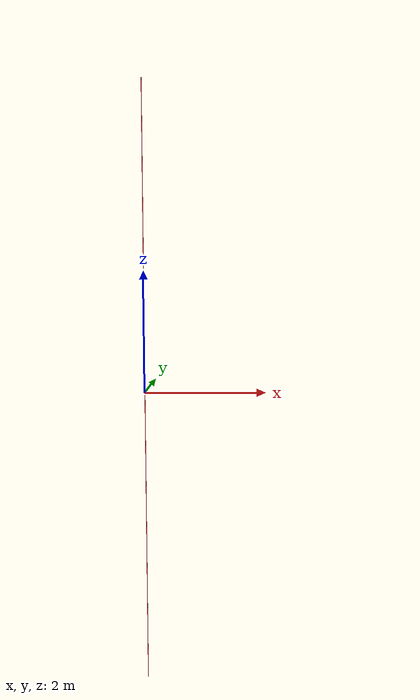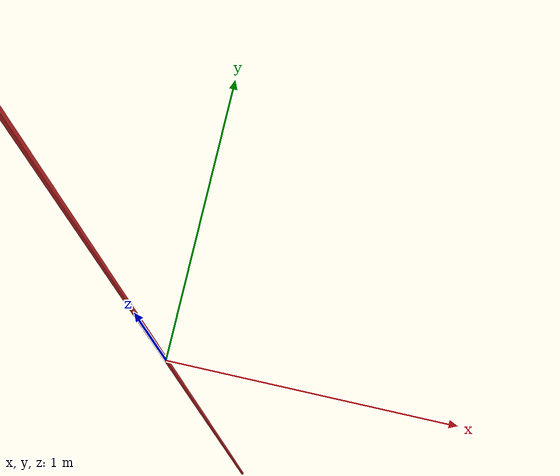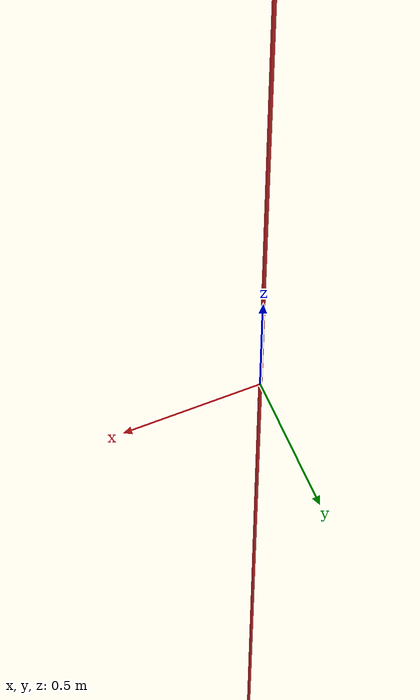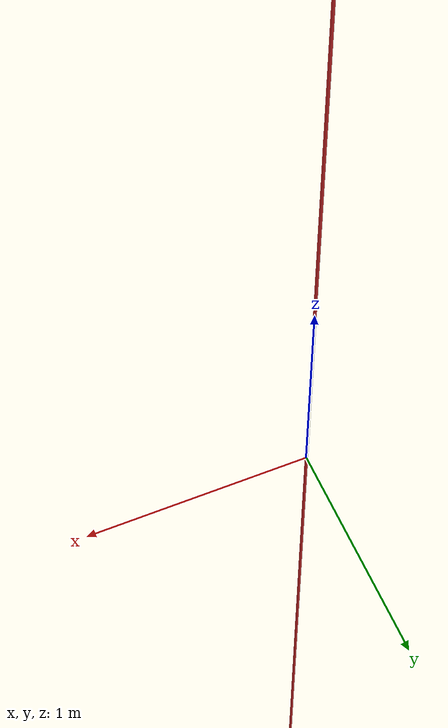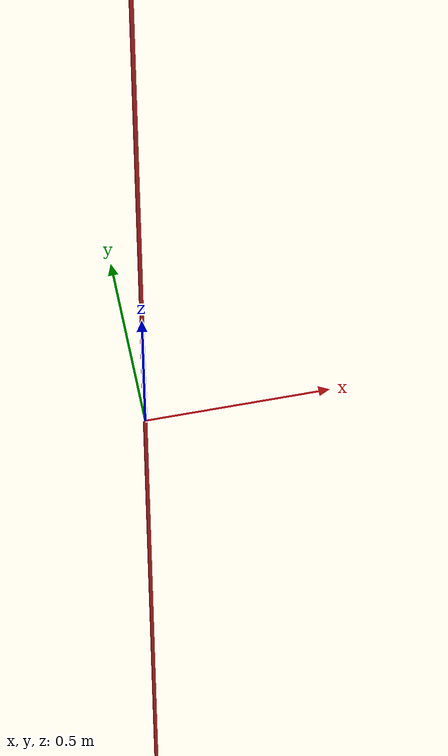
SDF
<?xml version="1.0"?>
<sdf version="1.6">
  <model name="ray_point">
    <static>true</static>
    <pose>0 0 0.005 0 -1.57075 0</pose>
    <link name="ray_link">
      <visual name="visual_box">
        <geometry>
          <box>
            <size>10.0 0.01 0.01</size>
          </box>
        </geometry>
        <material>
          <script>
            <uri>file://media/materials/scripts/gazebo.material</uri>
            <name>Gazebo/Red</name>
          </script>
        </material>
      </visual>

      <!-- ray sensor -->
      <sensor name="sensor_ray" type="ray">
        <ray>
          <range>
            <min>0.05</min>
            <max>50.0</max>
          </range>
        </ray>
        <always_on>true</always_on>
        <update_rate>1.0</update_rate>
        <plugin name="range" filename="libgazebo_ros_target_point.so">
          <ros>
            <namespace>/goal</namespace>
            <remapping>~/out:=touched</remapping>
          </ros>
          <output_type>std_msgs/Bool</output_type>
        </plugin>
      </sensor>

    </link>
  </model>
</sdf>
